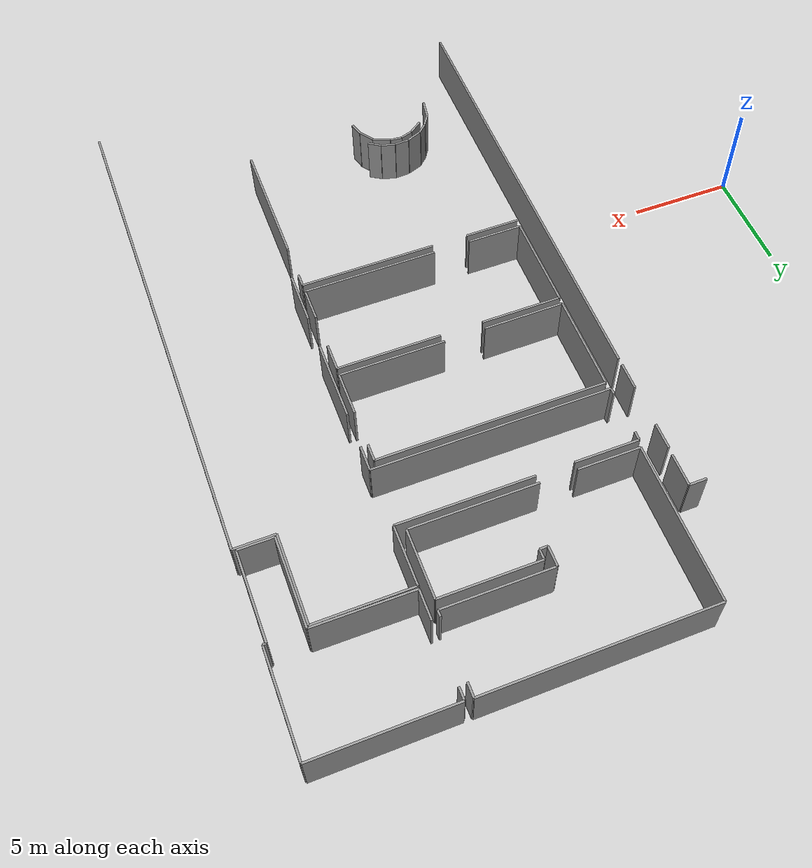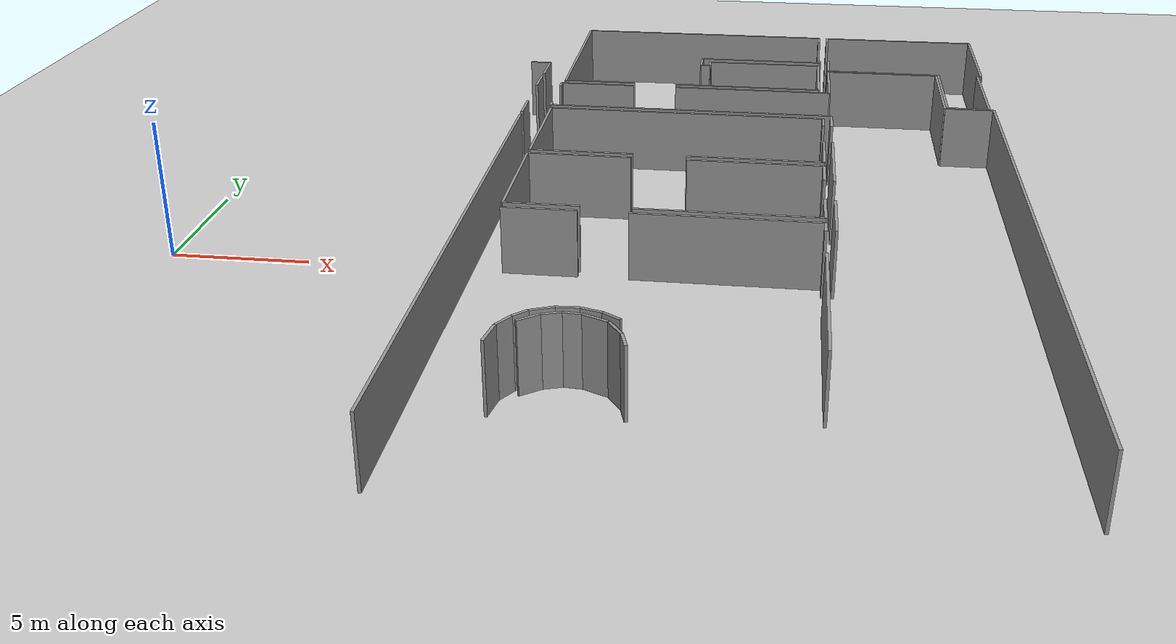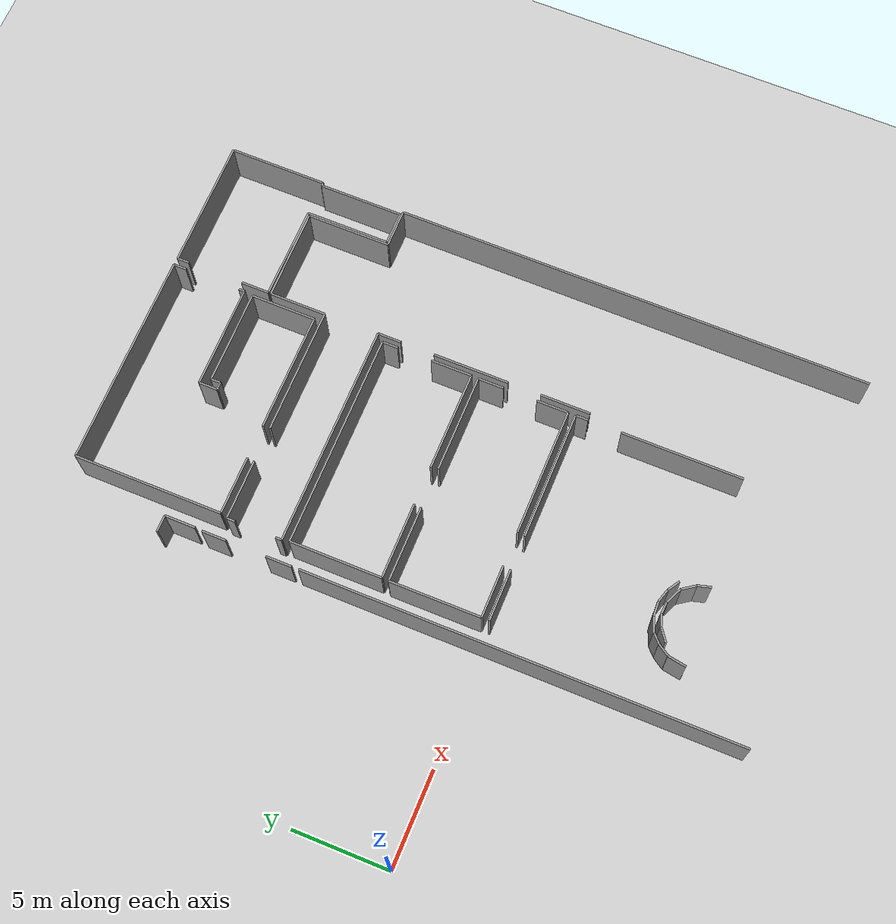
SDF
<sdf version="1.6">
 <world name="default">
  <model name="ground_plane">
   <static>1</static>
   <link name="link">
    <collision name="collision">
     <geometry><plane><normal>0 0 1</normal><size>100 100</size></plane></geometry>
     <surface><friction><ode><mu>100</mu><mu2>50</mu2></ode></friction></surface>
    </collision>
    <visual name="visual">
     <cast_shadows>0</cast_shadows>
     <geometry><plane><normal>0 0 1</normal><size>100 100</size></plane></geometry>
     <material>
      <script><uri>file://media/materials/scripts/gazebo.material</uri><name>Gazebo/Grey</name></script>
     </material>
    </visual>
   </link>
  </model>
  <model name="50032446">
   <static>1</static>
   <link name="Wall_87">
    <collision name="Wall_87_Collision">
     <geometry><box><size>1.24237652803 0.1 2.5</size></box></geometry>
     <pose>0.621188264015 0 1.25 0 0 0</pose>
    </collision>
    <visual name="Wall_87_Visual">
     <pose>0.621188264015 0 1.25 0 0 0</pose>
     <geometry><box><size>1.24237652803 0.1 2.5</size></box></geometry>
     <material>
      <script><uri>file://media/materials/scripts/gazebo.material</uri><name>Gazebo/Grey</name></script>
      <ambient>1 1 1 1</ambient>
     </material>
    </visual>
    <pose>40.6044639646 -8.59445988519 0 0 0 -1.57079632679</pose>
   </link>
   <link name="Wall_88">
    <collision name="Wall_88_Collision">
     <geometry><box><size>1.32243966353 0.1 2.5</size></box></geometry>
     <pose>0.661219831766 0 1.25 0 0 0</pose>
    </collision>
    <visual name="Wall_88_Visual">
     <pose>0.661219831766 0 1.25 0 0 0</pose>
     <geometry><box><size>1.32243966353 0.1 2.5</size></box></geometry>
     <material>
      <script><uri>file://media/materials/scripts/gazebo.material</uri><name>Gazebo/Grey</name></script>
      <ambient>1 1 1 1</ambient>
     </material>
    </visual>
    <pose>40.6044639646 -11.8785734528 0 0 0 -1.57079632679</pose>
   </link>
   <link name="Wall_119">
    <collision name="Wall_119_Collision">
     <geometry><box><size>22.2575516693 0.1 2.5</size></box></geometry>
     <pose>11.1287758347 0 1.25 0 0 0</pose>
    </collision>
    <visual name="Wall_119_Visual">
     <pose>11.1287758347 0 1.25 0 0 0</pose>
     <geometry><box><size>22.2575516693 0.1 2.5</size></box></geometry>
     <material>
      <script><uri>file://media/materials/scripts/gazebo.material</uri><name>Gazebo/Grey</name></script>
      <ambient>1 1 1 1</ambient>
     </material>
    </visual>
    <pose>40.6092931696 -13.5436325026 0 0 0 -1.57079632679</pose>
   </link>
   <link name="Wall_131">
    <collision name="Wall_131_Collision">
     <geometry><box><size>1.56898328714 0.1 2.5</size></box></geometry>
     <pose>0.784491643569 0 1.25 0 0 0</pose>
    </collision>
    <visual name="Wall_131_Visual">
     <pose>0.784491643569 0 1.25 0 0 0</pose>
     <geometry><box><size>1.56898328714 0.1 2.5</size></box></geometry>
     <material>
      <script><uri>file://media/materials/scripts/gazebo.material</uri><name>Gazebo/Grey</name></script>
      <ambient>1 1 1 1</ambient>
     </material>
    </visual>
    <pose>40.634710038 -8.22286526899 0 0 0 1.57079632679</pose>
   </link>
   <link name="Wall_132">
    <collision name="Wall_132_Collision">
     <geometry><box><size>0.849431742364 0.1 2.5</size></box></geometry>
     <pose>0.424715871182 0 1.25 0 0 0</pose>
    </collision>
    <visual name="Wall_132_Visual">
     <pose>0.424715871182 0 1.25 0 0 0</pose>
     <geometry><box><size>0.849431742364 0.1 2.5</size></box></geometry>
     <material>
      <script><uri>file://media/materials/scripts/gazebo.material</uri><name>Gazebo/Grey</name></script>
      <ambient>1 1 1 1</ambient>
     </material>
    </visual>
    <pose>40.634710038 -6.65388198185 0 0 0 3.14159265359</pose>
   </link>
   <link name="Wall_143">
    <collision name="Wall_143_Collision">
     <geometry><box><size>2.5401618292 0.1 2.5</size></box></geometry>
     <pose>1.2700809146 0 1.25 0 0 0</pose>
    </collision>
    <visual name="Wall_143_Visual">
     <pose>1.2700809146 0 1.25 0 0 0</pose>
     <geometry><box><size>2.5401618292 0.1 2.5</size></box></geometry>
     <material>
      <script><uri>file://media/materials/scripts/gazebo.material</uri><name>Gazebo/Grey</name></script>
      <ambient>1 1 1 1</ambient>
     </material>
    </visual>
    <pose>53.0147583046 -23.29659325 0 0 0 1.57079632679</pose>
   </link>
   <link name="Wall_144">
    <collision name="Wall_144_Collision">
     <geometry><box><size>3.8679390351 0.1 2.5</size></box></geometry>
     <pose>1.93396951755 0 1.25 0 0 0</pose>
    </collision>
    <visual name="Wall_144_Visual">
     <pose>1.93396951755 0 1.25 0 0 0</pose>
     <geometry><box><size>3.8679390351 0.1 2.5</size></box></geometry>
     <material>
      <script><uri>file://media/materials/scripts/gazebo.material</uri><name>Gazebo/Grey</name></script>
      <ambient>1 1 1 1</ambient>
     </material>
    </visual>
    <pose>53.0147583046 -19.0598554543 0 0 0 1.57079632679</pose>
   </link>
   <link name="Wall_145">
    <collision name="Wall_145_Collision">
     <geometry><box><size>1.21441797278 0.1 2.5</size></box></geometry>
     <pose>0.607208986388 0 1.25 0 0 0</pose>
    </collision>
    <visual name="Wall_145_Visual">
     <pose>0.607208986388 0 1.25 0 0 0</pose>
     <geometry><box><size>1.21441797278 0.1 2.5</size></box></geometry>
     <material>
      <script><uri>file://media/materials/scripts/gazebo.material</uri><name>Gazebo/Grey</name></script>
      <ambient>1 1 1 1</ambient>
     </material>
    </visual>
    <pose>53.0147583046 -13.4470484026 0 0 0 1.57079632679</pose>
   </link>
   <link name="Wall_146">
    <collision name="Wall_146_Collision">
     <geometry><box><size>11.3943821096 0.1 2.5</size></box></geometry>
     <pose>5.69719105479 0 1.25 0 0 0</pose>
    </collision>
    <visual name="Wall_146_Visual">
     <pose>5.69719105479 0 1.25 0 0 0</pose>
     <geometry><box><size>11.3943821096 0.1 2.5</size></box></geometry>
     <material>
      <script><uri>file://media/materials/scripts/gazebo.material</uri><name>Gazebo/Grey</name></script>
      <ambient>1 1 1 1</ambient>
     </material>
    </visual>
    <pose>53.0147583046 -12.2326304298 0 0 0 3.14159265359</pose>
   </link>
   <link name="Wall_147">
    <collision name="Wall_147_Collision">
     <geometry><box><size>0.315423337006 0.1 2.5</size></box></geometry>
     <pose>0.157711668503 0 1.25 0 0 0</pose>
    </collision>
    <visual name="Wall_147_Visual">
     <pose>0.157711668503 0 1.25 0 0 0</pose>
     <geometry><box><size>0.315423337006 0.1 2.5</size></box></geometry>
     <material>
      <script><uri>file://media/materials/scripts/gazebo.material</uri><name>Gazebo/Grey</name></script>
      <ambient>1 1 1 1</ambient>
     </material>
    </visual>
    <pose>41.6203761951 -12.2326304298 0 0 0 1.57079632679</pose>
   </link>
   <link name="Wall_148">
    <collision name="Wall_148_Collision">
     <geometry><box><size>0.416836641974 0.1 2.5</size></box></geometry>
     <pose>0.208418320987 0 1.25 0 0 0</pose>
    </collision>
    <visual name="Wall_148_Visual">
     <pose>0.208418320987 0 1.25 0 0 0</pose>
     <geometry><box><size>0.416836641974 0.1 2.5</size></box></geometry>
     <material>
      <script><uri>file://media/materials/scripts/gazebo.material</uri><name>Gazebo/Grey</name></script>
      <ambient>1 1 1 1</ambient>
     </material>
    </visual>
    <pose>41.6203761951 -9.82006128007 0 0 0 1.57079632679</pose>
   </link>
   <link name="Wall_149">
    <collision name="Wall_149_Collision">
     <geometry><box><size>3.08332030719 0.1 2.5</size></box></geometry>
     <pose>1.54166015359 0 1.25 0 0 0</pose>
    </collision>
    <visual name="Wall_149_Visual">
     <pose>1.54166015359 0 1.25 0 0 0</pose>
     <geometry><box><size>3.08332030719 0.1 2.5</size></box></geometry>
     <material>
      <script><uri>file://media/materials/scripts/gazebo.material</uri><name>Gazebo/Grey</name></script>
      <ambient>1 1 1 1</ambient>
     </material>
    </visual>
    <pose>41.6203761951 -9.4032246381 0 0 0 0.0</pose>
   </link>
   <link name="Wall_150">
    <collision name="Wall_150_Collision">
     <geometry><box><size>6.47570973428 0.1 2.5</size></box></geometry>
     <pose>3.23785486714 0 1.25 0 0 0</pose>
    </collision>
    <visual name="Wall_150_Visual">
     <pose>3.23785486714 0 1.25 0 0 0</pose>
     <geometry><box><size>6.47570973428 0.1 2.5</size></box></geometry>
     <material>
      <script><uri>file://media/materials/scripts/gazebo.material</uri><name>Gazebo/Grey</name></script>
      <ambient>1 1 1 1</ambient>
     </material>
    </visual>
    <pose>46.5044816293 -9.4032246381 0 0 0 0.0</pose>
   </link>
   <link name="Wall_151">
    <collision name="Wall_151_Collision">
     <geometry><box><size>2.88684791436 0.1 2.5</size></box></geometry>
     <pose>1.44342395718 0 1.25 0 0 0</pose>
    </collision>
    <visual name="Wall_151_Visual">
     <pose>1.44342395718 0 1.25 0 0 0</pose>
     <geometry><box><size>2.88684791436 0.1 2.5</size></box></geometry>
     <material>
      <script><uri>file://media/materials/scripts/gazebo.material</uri><name>Gazebo/Grey</name></script>
      <ambient>1 1 1 1</ambient>
     </material>
    </visual>
    <pose>52.9801913636 -9.4032246381 0 0 0 1.57079632679</pose>
   </link>
   <link name="Wall_152">
    <collision name="Wall_152_Collision">
     <geometry><box><size>4.64137434091 0.1 2.5</size></box></geometry>
     <pose>2.32068717045 0 1.25 0 0 0</pose>
    </collision>
    <visual name="Wall_152_Visual">
     <pose>2.32068717045 0 1.25 0 0 0</pose>
     <geometry><box><size>4.64137434091 0.1 2.5</size></box></geometry>
     <material>
      <script><uri>file://media/materials/scripts/gazebo.material</uri><name>Gazebo/Grey</name></script>
      <ambient>1 1 1 1</ambient>
     </material>
    </visual>
    <pose>52.9801913636 -6.51637672374 0 0 0 0.0</pose>
   </link>
   <link name="Wall_153">
    <collision name="Wall_153_Collision">
     <geometry><box><size>4.26088382077 0.1 2.5</size></box></geometry>
     <pose>2.13044191038 0 1.25 0 0 0</pose>
    </collision>
    <visual name="Wall_153_Visual">
     <pose>2.13044191038 0 1.25 0 0 0</pose>
     <geometry><box><size>4.26088382077 0.1 2.5</size></box></geometry>
     <material>
      <script><uri>file://media/materials/scripts/gazebo.material</uri><name>Gazebo/Grey</name></script>
      <ambient>1 1 1 1</ambient>
     </material>
    </visual>
    <pose>57.6215657045 -6.51637672374 0 0 0 -1.57079632679</pose>
   </link>
   <link name="Wall_154">
    <collision name="Wall_154_Collision">
     <geometry><box><size>1.94159457807 0.1 2.5</size></box></geometry>
     <pose>0.970797289037 0 1.25 0 0 0</pose>
    </collision>
    <visual name="Wall_154_Visual">
     <pose>0.970797289037 0 1.25 0 0 0</pose>
     <geometry><box><size>1.94159457807 0.1 2.5</size></box></geometry>
     <material>
      <script><uri>file://media/materials/scripts/gazebo.material</uri><name>Gazebo/Grey</name></script>
      <ambient>1 1 1 1</ambient>
     </material>
    </visual>
    <pose>57.6215657045 -10.7772605445 0 0 0 0.0</pose>
   </link>
   <link name="Wall_155">
    <collision name="Wall_155_Collision">
     <geometry><box><size>24.4426398468 0.1 2.5</size></box></geometry>
     <pose>12.2213199234 0 1.25 0 0 0</pose>
    </collision>
    <visual name="Wall_155_Visual">
     <pose>12.2213199234 0 1.25 0 0 0</pose>
     <geometry><box><size>24.4426398468 0.1 2.5</size></box></geometry>
     <material>
      <script><uri>file://media/materials/scripts/gazebo.material</uri><name>Gazebo/Grey</name></script>
      <ambient>1 1 1 1</ambient>
     </material>
    </visual>
    <pose>59.5631602826 -10.7772605445 0 0 0 -1.57079632679</pose>
   </link>
   <link name="Wall_164">
    <collision name="Wall_164_Collision">
     <geometry><box><size>2.65402939969 0.1 2.5</size></box></geometry>
     <pose>1.32701469985 0 1.25 0 0 0</pose>
    </collision>
    <visual name="Wall_164_Visual">
     <pose>1.32701469985 0 1.25 0 0 0</pose>
     <geometry><box><size>2.65402939969 0.1 2.5</size></box></geometry>
     <material>
      <script><uri>file://media/materials/scripts/gazebo.material</uri><name>Gazebo/Grey</name></script>
      <ambient>1 1 1 1</ambient>
     </material>
    </visual>
    <pose>41.68315586 -22.68430089 0 0 0 0.0</pose>
   </link>
   <link name="Wall_165">
    <collision name="Wall_165_Collision">
     <geometry><box><size>6.57534385846 0.1 2.5</size></box></geometry>
     <pose>3.28767192923 0 1.25 0 0 0</pose>
    </collision>
    <visual name="Wall_165_Visual">
     <pose>3.28767192923 0 1.25 0 0 0</pose>
     <geometry><box><size>6.57534385846 0.1 2.5</size></box></geometry>
     <material>
      <script><uri>file://media/materials/scripts/gazebo.material</uri><name>Gazebo/Grey</name></script>
      <ambient>1 1 1 1</ambient>
     </material>
    </visual>
    <pose>46.092728361 -22.68430089 0 0 0 0.0</pose>
   </link>
   <link name="Wall_166">
    <collision name="Wall_166_Collision">
     <geometry><box><size>0.642792602166 0.1 2.5</size></box></geometry>
     <pose>0.321396301083 0 1.25 0 0 0</pose>
    </collision>
    <visual name="Wall_166_Visual">
     <pose>0.321396301083 0 1.25 0 0 0</pose>
     <geometry><box><size>0.642792602166 0.1 2.5</size></box></geometry>
     <material>
      <script><uri>file://media/materials/scripts/gazebo.material</uri><name>Gazebo/Grey</name></script>
      <ambient>1 1 1 1</ambient>
     </material>
    </visual>
    <pose>52.6680722195 -22.68430089 0 0 0 -1.57079632679</pose>
   </link>
   <link name="Wall_167">
    <collision name="Wall_167_Collision">
     <geometry><box><size>6.21086596542 0.1 2.5</size></box></geometry>
     <pose>3.10543298271 0 1.25 0 0 0</pose>
    </collision>
    <visual name="Wall_167_Visual">
     <pose>3.10543298271 0 1.25 0 0 0</pose>
     <geometry><box><size>6.21086596542 0.1 2.5</size></box></geometry>
     <material>
      <script><uri>file://media/materials/scripts/gazebo.material</uri><name>Gazebo/Grey</name></script>
      <ambient>1 1 1 1</ambient>
     </material>
    </visual>
    <pose>52.6680722195 -25.0157902295 0 0 0 -1.57079632679</pose>
   </link>
   <link name="Wall_170">
    <collision name="Wall_170_Collision">
     <geometry><box><size>0.673524185334 0.1 2.5</size></box></geometry>
     <pose>0.336762092667 0 1.25 0 0 0</pose>
    </collision>
    <visual name="Wall_170_Visual">
     <pose>0.336762092667 0 1.25 0 0 0</pose>
     <geometry><box><size>0.673524185334 0.1 2.5</size></box></geometry>
     <material>
      <script><uri>file://media/materials/scripts/gazebo.material</uri><name>Gazebo/Grey</name></script>
      <ambient>1 1 1 1</ambient>
     </material>
    </visual>
    <pose>46.7533127711 -30.146693456 0 0 0 2.56259127229</pose>
   </link>
   <link name="Wall_171">
    <collision name="Wall_171_Collision">
     <geometry><box><size>0.722530401823 0.1 2.5</size></box></geometry>
     <pose>0.361265200912 0 1.25 0 0 0</pose>
    </collision>
    <visual name="Wall_171_Visual">
     <pose>0.361265200912 0 1.25 0 0 0</pose>
     <geometry><box><size>0.722530401823 0.1 2.5</size></box></geometry>
     <material>
      <script><uri>file://media/materials/scripts/gazebo.material</uri><name>Gazebo/Grey</name></script>
      <ambient>1 1 1 1</ambient>
     </material>
    </visual>
    <pose>46.1895666297 -29.7781488641 0 0 0 2.85778447335</pose>
   </link>
   <link name="Wall_172">
    <collision name="Wall_172_Collision">
     <geometry><box><size>0.730610303078 0.1 2.5</size></box></geometry>
     <pose>0.365305151539 0 1.25 0 0 0</pose>
    </collision>
    <visual name="Wall_172_Visual">
     <pose>0.365305151539 0 1.25 0 0 0</pose>
     <geometry><box><size>0.730610303078 0.1 2.5</size></box></geometry>
     <material>
      <script><uri>file://media/materials/scripts/gazebo.material</uri><name>Gazebo/Grey</name></script>
      <ambient>1 1 1 1</ambient>
     </material>
    </visual>
    <pose>45.4959402907 -29.5758305915 0 0 0 -3.09217280755</pose>
   </link>
   <link name="Wall_173">
    <collision name="Wall_173_Collision">
     <geometry><box><size>0.800808244944 0.1 2.5</size></box></geometry>
     <pose>0.400404122472 0 1.25 0 0 0</pose>
    </collision>
    <visual name="Wall_173_Visual">
     <pose>0.400404122472 0 1.25 0 0 0</pose>
     <geometry><box><size>0.800808244944 0.1 2.5</size></box></geometry>
     <material>
      <script><uri>file://media/materials/scripts/gazebo.material</uri><name>Gazebo/Grey</name></script>
      <ambient>1 1 1 1</ambient>
     </material>
    </visual>
    <pose>44.7662219986 -29.6119225446 0 0 0 -2.76250078605</pose>
   </link>
   <link name="Wall_174">
    <collision name="Wall_174_Collision">
     <geometry><box><size>0.572337424438 0.1 2.5</size></box></geometry>
     <pose>0.286168712219 0 1.25 0 0 0</pose>
    </collision>
    <visual name="Wall_174_Visual">
     <pose>0.286168712219 0 1.25 0 0 0</pose>
     <geometry><box><size>0.572337424438 0.1 2.5</size></box></geometry>
     <material>
      <script><uri>file://media/materials/scripts/gazebo.material</uri><name>Gazebo/Grey</name></script>
      <ambient>1 1 1 1</ambient>
     </material>
    </visual>
    <pose>44.0222702601 -29.9082832303 0 0 0 -2.37440855614</pose>
   </link>
   <link name="Wall_175">
    <collision name="Wall_175_Collision">
     <geometry><box><size>0.679492109163 0.1 2.5</size></box></geometry>
     <pose>0.339746054582 0 1.25 0 0 0</pose>
    </collision>
    <visual name="Wall_175_Visual">
     <pose>0.339746054582 0 1.25 0 0 0</pose>
     <geometry><box><size>0.679492109163 0.1 2.5</size></box></geometry>
     <material>
      <script><uri>file://media/materials/scripts/gazebo.material</uri><name>Gazebo/Grey</name></script>
      <ambient>1 1 1 1</ambient>
     </material>
    </visual>
    <pose>43.6102628231 -30.3055488836 0 0 0 -2.1440666491</pose>
   </link>
   <link name="Wall_176">
    <collision name="Wall_176_Collision">
     <geometry><box><size>0.952493540647 0.1 2.5</size></box></geometry>
     <pose>0.476246770324 0 1.25 0 0 0</pose>
    </collision>
    <visual name="Wall_176_Visual">
     <pose>0.476246770324 0 1.25 0 0 0</pose>
     <geometry><box><size>0.952493540647 0.1 2.5</size></box></geometry>
     <material>
      <script><uri>file://media/materials/scripts/gazebo.material</uri><name>Gazebo/Grey</name></script>
      <ambient>1 1 1 1</ambient>
     </material>
    </visual>
    <pose>43.2417182311 -30.8764117482 0 0 0 -1.73835780935</pose>
   </link>
   <link name="Wall_182">
    <collision name="Wall_182_Collision">
     <geometry><box><size>2.67385455705 0.1 2.5</size></box></geometry>
     <pose>1.33692727853 0 1.25 0 0 0</pose>
    </collision>
    <visual name="Wall_182_Visual">
     <pose>1.33692727853 0 1.25 0 0 0</pose>
     <geometry><box><size>2.67385455705 0.1 2.5</size></box></geometry>
     <material>
      <script><uri>file://media/materials/scripts/gazebo.material</uri><name>Gazebo/Grey</name></script>
      <ambient>1 1 1 1</ambient>
     </material>
    </visual>
    <pose>41.6943392822 -22.2982186588 0 0 0 0.0</pose>
   </link>
   <link name="Wall_183">
    <collision name="Wall_183_Collision">
     <geometry><box><size>6.50087243401 0.1 2.5</size></box></geometry>
     <pose>3.250436217 0 1.25 0 0 0</pose>
    </collision>
    <visual name="Wall_183_Visual">
     <pose>3.250436217 0 1.25 0 0 0</pose>
     <geometry><box><size>6.50087243401 0.1 2.5</size></box></geometry>
     <material>
      <script><uri>file://media/materials/scripts/gazebo.material</uri><name>Gazebo/Grey</name></script>
      <ambient>1 1 1 1</ambient>
     </material>
    </visual>
    <pose>46.16440393 -22.2982186588 0 0 0 0.0</pose>
   </link>
   <link name="Wall_184">
    <collision name="Wall_184_Collision">
     <geometry><box><size>1.60863360186 0.1 2.5</size></box></geometry>
     <pose>0.804316800931 0 1.25 0 0 0</pose>
    </collision>
    <visual name="Wall_184_Visual">
     <pose>0.804316800931 0 1.25 0 0 0</pose>
     <geometry><box><size>1.60863360186 0.1 2.5</size></box></geometry>
     <material>
      <script><uri>file://media/materials/scripts/gazebo.material</uri><name>Gazebo/Grey</name></script>
      <ambient>1 1 1 1</ambient>
     </material>
    </visual>
    <pose>52.665276364 -22.2982186588 0 0 0 1.57079632679</pose>
   </link>
   <link name="Wall_185">
    <collision name="Wall_185_Collision">
     <geometry><box><size>1.32243966353 0.1 2.5</size></box></geometry>
     <pose>0.661219831766 0 1.25 0 0 0</pose>
    </collision>
    <visual name="Wall_185_Visual">
     <pose>0.661219831766 0 1.25 0 0 0</pose>
     <geometry><box><size>1.32243966353 0.1 2.5</size></box></geometry>
     <material>
      <script><uri>file://media/materials/scripts/gazebo.material</uri><name>Gazebo/Grey</name></script>
      <ambient>1 1 1 1</ambient>
     </material>
    </visual>
    <pose>52.665276364 -18.9703880775 0 0 0 1.57079632679</pose>
   </link>
   <link name="Wall_186">
    <collision name="Wall_186_Collision">
     <geometry><box><size>5.01271478842 0.1 2.5</size></box></geometry>
     <pose>2.50635739421 0 1.25 0 0 0</pose>
    </collision>
    <visual name="Wall_186_Visual">
     <pose>2.50635739421 0 1.25 0 0 0</pose>
     <geometry><box><size>5.01271478842 0.1 2.5</size></box></geometry>
     <material>
      <script><uri>file://media/materials/scripts/gazebo.material</uri><name>Gazebo/Grey</name></script>
      <ambient>1 1 1 1</ambient>
     </material>
    </visual>
    <pose>52.665276364 -17.6479484139 0 0 0 3.14159265359</pose>
   </link>
   <link name="Wall_187">
    <collision name="Wall_187_Collision">
     <geometry><box><size>3.89233922878 0.1 2.5</size></box></geometry>
     <pose>1.94616961439 0 1.25 0 0 0</pose>
    </collision>
    <visual name="Wall_187_Visual">
     <pose>1.94616961439 0 1.25 0 0 0</pose>
     <geometry><box><size>3.89233922878 0.1 2.5</size></box></geometry>
     <material>
      <script><uri>file://media/materials/scripts/gazebo.material</uri><name>Gazebo/Grey</name></script>
      <ambient>1 1 1 1</ambient>
     </material>
    </visual>
    <pose>45.5757492575 -17.6479484139 0 0 0 3.14159265359</pose>
   </link>
   <link name="Wall_188">
    <collision name="Wall_188_Collision">
     <geometry><box><size>4.65028308802 0.1 2.5</size></box></geometry>
     <pose>2.32514154401 0 1.25 0 0 0</pose>
    </collision>
    <visual name="Wall_188_Visual">
     <pose>2.32514154401 0 1.25 0 0 0</pose>
     <geometry><box><size>4.65028308802 0.1 2.5</size></box></geometry>
     <material>
      <script><uri>file://media/materials/scripts/gazebo.material</uri><name>Gazebo/Grey</name></script>
      <ambient>1 1 1 1</ambient>
     </material>
    </visual>
    <pose>41.6834100287 -17.6479484139 0 0 0 -1.56844609063</pose>
   </link>
   <link name="Wall_189">
    <collision name="Wall_189_Collision">
     <geometry><box><size>4.69830812615 0.1 2.5</size></box></geometry>
     <pose>2.34915406308 0 1.25 0 0 0</pose>
    </collision>
    <visual name="Wall_189_Visual">
     <pose>2.34915406308 0 1.25 0 0 0</pose>
     <geometry><box><size>4.69830812615 0.1 2.5</size></box></geometry>
     <material>
      <script><uri>file://media/materials/scripts/gazebo.material</uri><name>Gazebo/Grey</name></script>
      <ambient>1 1 1 1</ambient>
     </material>
    </visual>
    <pose>41.7022185114 -17.2969414611 0 0 0 1.57079632679</pose>
   </link>
   <link name="Wall_190">
    <collision name="Wall_190_Collision">
     <geometry><box><size>10.9833913473 0.1 2.5</size></box></geometry>
     <pose>5.49169567367 0 1.25 0 0 0</pose>
    </collision>
    <visual name="Wall_190_Visual">
     <pose>5.49169567367 0 1.25 0 0 0</pose>
     <geometry><box><size>10.9833913473 0.1 2.5</size></box></geometry>
     <material>
      <script><uri>file://media/materials/scripts/gazebo.material</uri><name>Gazebo/Grey</name></script>
      <ambient>1 1 1 1</ambient>
     </material>
    </visual>
    <pose>41.7022185114 -12.598633335 0 0 0 0.0</pose>
   </link>
   <link name="Wall_191">
    <collision name="Wall_191_Collision">
     <geometry><box><size>0.824014873951 0.1 2.5</size></box></geometry>
     <pose>0.412007436976 0 1.25 0 0 0</pose>
    </collision>
    <visual name="Wall_191_Visual">
     <pose>0.412007436976 0 1.25 0 0 0</pose>
     <geometry><box><size>0.824014873951 0.1 2.5</size></box></geometry>
     <material>
      <script><uri>file://media/materials/scripts/gazebo.material</uri><name>Gazebo/Grey</name></script>
      <ambient>1 1 1 1</ambient>
     </material>
    </visual>
    <pose>52.6856098587 -12.598633335 0 0 0 -1.57079632679</pose>
   </link>
   <link name="Wall_192">
    <collision name="Wall_192_Collision">
     <geometry><box><size>2.10731256013 0.1 2.5</size></box></geometry>
     <pose>1.05365628006 0 1.25 0 0 0</pose>
    </collision>
    <visual name="Wall_192_Visual">
     <pose>1.05365628006 0 1.25 0 0 0</pose>
     <geometry><box><size>2.10731256013 0.1 2.5</size></box></geometry>
     <material>
      <script><uri>file://media/materials/scripts/gazebo.material</uri><name>Gazebo/Grey</name></script>
      <ambient>1 1 1 1</ambient>
     </material>
    </visual>
    <pose>52.6856098587 -15.1774288042 0 0 0 -1.57079632679</pose>
   </link>
   <link name="Wall_193">
    <collision name="Wall_193_Collision">
     <geometry><box><size>5.09125291182 0.1 2.5</size></box></geometry>
     <pose>2.54562645591 0 1.25 0 0 0</pose>
    </collision>
    <visual name="Wall_193_Visual">
     <pose>2.54562645591 0 1.25 0 0 0</pose>
     <geometry><box><size>5.09125291182 0.1 2.5</size></box></geometry>
     <material>
      <script><uri>file://media/materials/scripts/gazebo.material</uri><name>Gazebo/Grey</name></script>
      <ambient>1 1 1 1</ambient>
     </material>
    </visual>
    <pose>52.6856098587 -17.2847413643 0 0 0 3.14159265359</pose>
   </link>
   <link name="Wall_194">
    <collision name="Wall_194_Collision">
     <geometry><box><size>3.90684589273 0.1 2.5</size></box></geometry>
     <pose>1.95342294637 0 1.25 0 0 0</pose>
    </collision>
    <visual name="Wall_194_Visual">
     <pose>1.95342294637 0 1.25 0 0 0</pose>
     <geometry><box><size>3.90684589273 0.1 2.5</size></box></geometry>
     <material>
      <script><uri>file://media/materials/scripts/gazebo.material</uri><name>Gazebo/Grey</name></script>
      <ambient>1 1 1 1</ambient>
     </material>
    </visual>
    <pose>45.6090453551 -17.2847413643 0 0 0 -3.13846990009</pose>
   </link>
   <link name="Wall_195">
    <collision name="Wall_195_Collision">
     <geometry><box><size>7.61133541497 0.1 2.5</size></box></geometry>
     <pose>3.80566770749 0 1.25 0 0 0</pose>
    </collision>
    <visual name="Wall_195_Visual">
     <pose>3.80566770749 0 1.25 0 0 0</pose>
     <geometry><box><size>7.61133541497 0.1 2.5</size></box></geometry>
     <material>
      <script><uri>file://media/materials/scripts/gazebo.material</uri><name>Gazebo/Grey</name></script>
      <ambient>1 1 1 1</ambient>
     </material>
    </visual>
    <pose>41.7357687777 -9.04128843189 0 0 0 1.57079632679</pose>
   </link>
   <link name="Wall_196">
    <collision name="Wall_196_Collision">
     <geometry><box><size>10.8794363555 0.1 2.5</size></box></geometry>
     <pose>5.43971817776 0 1.25 0 0 0</pose>
    </collision>
    <visual name="Wall_196_Visual">
     <pose>5.43971817776 0 1.25 0 0 0</pose>
     <geometry><box><size>10.8794363555 0.1 2.5</size></box></geometry>
     <material>
      <script><uri>file://media/materials/scripts/gazebo.material</uri><name>Gazebo/Grey</name></script>
      <ambient>1 1 1 1</ambient>
     </material>
    </visual>
    <pose>41.7357687777 -1.42995301692 0 0 0 0.0</pose>
   </link>
   <link name="Wall_197">
    <collision name="Wall_197_Collision">
     <geometry><box><size>0.675834531103 0.1 2.5</size></box></geometry>
     <pose>0.337917265552 0 1.25 0 0 0</pose>
    </collision>
    <visual name="Wall_197_Visual">
     <pose>0.337917265552 0 1.25 0 0 0</pose>
     <geometry><box><size>0.675834531103 0.1 2.5</size></box></geometry>
     <material>
      <script><uri>file://media/materials/scripts/gazebo.material</uri><name>Gazebo/Grey</name></script>
      <ambient>1 1 1 1</ambient>
     </material>
    </visual>
    <pose>52.6152051332 -1.42995301692 0 0 0 -1.57079632679</pose>
   </link>
   <link name="Wall_198">
    <collision name="Wall_198_Collision">
     <geometry><box><size>0.300935722011 0.1 2.5</size></box></geometry>
     <pose>0.150467861005 0 1.25 0 0 0</pose>
    </collision>
    <visual name="Wall_198_Visual">
     <pose>0.150467861005 0 1.25 0 0 0</pose>
     <geometry><box><size>0.300935722011 0.1 2.5</size></box></geometry>
     <material>
      <script><uri>file://media/materials/scripts/gazebo.material</uri><name>Gazebo/Grey</name></script>
      <ambient>1 1 1 1</ambient>
     </material>
    </visual>
    <pose>52.6152051332 -4.9634060637 0 0 0 -1.57079632679</pose>
   </link>
   <link name="Wall_199">
    <collision name="Wall_199_Collision">
     <geometry><box><size>5.24070409809 0.1 2.5</size></box></geometry>
     <pose>2.62035204904 0 1.25 0 0 0</pose>
    </collision>
    <visual name="Wall_199_Visual">
     <pose>2.62035204904 0 1.25 0 0 0</pose>
     <geometry><box><size>5.24070409809 0.1 2.5</size></box></geometry>
     <material>
      <script><uri>file://media/materials/scripts/gazebo.material</uri><name>Gazebo/Grey</name></script>
      <ambient>1 1 1 1</ambient>
     </material>
    </visual>
    <pose>52.6152051332 -5.26434178571 0 0 0 3.14159265359</pose>
   </link>
   <link name="Wall_200">
    <collision name="Wall_200_Collision">
     <geometry><box><size>0.958978445225 0.1 2.5</size></box></geometry>
     <pose>0.479489222612 0 1.25 0 0 0</pose>
    </collision>
    <visual name="Wall_200_Visual">
     <pose>0.479489222612 0 1.25 0 0 0</pose>
     <geometry><box><size>0.958978445225 0.1 2.5</size></box></geometry>
     <material>
      <script><uri>file://media/materials/scripts/gazebo.material</uri><name>Gazebo/Grey</name></script>
      <ambient>1 1 1 1</ambient>
     </material>
    </visual>
    <pose>47.3745010351 -5.26434178571 0 0 0 -1.57079632679</pose>
   </link>
   <link name="Wall_201">
    <collision name="Wall_201_Collision">
     <geometry><box><size>0.382269700932 0.1 2.5</size></box></geometry>
     <pose>0.191134850466 0 1.25 0 0 0</pose>
    </collision>
    <visual name="Wall_201_Visual">
     <pose>0.191134850466 0 1.25 0 0 0</pose>
     <geometry><box><size>0.382269700932 0.1 2.5</size></box></geometry>
     <material>
      <script><uri>file://media/materials/scripts/gazebo.material</uri><name>Gazebo/Grey</name></script>
      <ambient>1 1 1 1</ambient>
     </material>
    </visual>
    <pose>47.3745010351 -6.22332023094 0 0 0 0.0</pose>
   </link>
   <link name="Wall_202">
    <collision name="Wall_202_Collision">
     <geometry><box><size>0.496899777475 0.1 2.5</size></box></geometry>
     <pose>0.248449888738 0 1.25 0 0 0</pose>
    </collision>
    <visual name="Wall_202_Visual">
     <pose>0.248449888738 0 1.25 0 0 0</pose>
     <geometry><box><size>0.496899777475 0.1 2.5</size></box></geometry>
     <material>
      <script><uri>file://media/materials/scripts/gazebo.material</uri><name>Gazebo/Grey</name></script>
      <ambient>1 1 1 1</ambient>
     </material>
    </visual>
    <pose>47.756770736 -6.22332023094 0 0 0 1.57079632679</pose>
   </link>
   <link name="Wall_203">
    <collision name="Wall_203_Collision">
     <geometry><box><size>4.78497964744 0.1 2.5</size></box></geometry>
     <pose>2.39248982372 0 1.25 0 0 0</pose>
    </collision>
    <visual name="Wall_203_Visual">
     <pose>2.39248982372 0 1.25 0 0 0</pose>
     <geometry><box><size>4.78497964744 0.1 2.5</size></box></geometry>
     <material>
      <script><uri>file://media/materials/scripts/gazebo.material</uri><name>Gazebo/Grey</name></script>
      <ambient>1 1 1 1</ambient>
     </material>
    </visual>
    <pose>47.756770736 -5.72642045346 0 0 0 0.0</pose>
   </link>
   <link name="Wall_204">
    <collision name="Wall_204_Collision">
     <geometry><box><size>3.31410547238 0.1 2.5</size></box></geometry>
     <pose>1.65705273619 0 1.25 0 0 0</pose>
    </collision>
    <visual name="Wall_204_Visual">
     <pose>1.65705273619 0 1.25 0 0 0</pose>
     <geometry><box><size>3.31410547238 0.1 2.5</size></box></geometry>
     <material>
      <script><uri>file://media/materials/scripts/gazebo.material</uri><name>Gazebo/Grey</name></script>
      <ambient>1 1 1 1</ambient>
     </material>
    </visual>
    <pose>52.5417503835 -5.72642045346 0 0 0 -1.57079632679</pose>
   </link>
   <link name="Wall_205">
    <collision name="Wall_205_Collision">
     <geometry><box><size>6.05404388731 0.1 2.5</size></box></geometry>
     <pose>3.02702194365 0 1.25 0 0 0</pose>
    </collision>
    <visual name="Wall_205_Visual">
     <pose>3.02702194365 0 1.25 0 0 0</pose>
     <geometry><box><size>6.05404388731 0.1 2.5</size></box></geometry>
     <material>
      <script><uri>file://media/materials/scripts/gazebo.material</uri><name>Gazebo/Grey</name></script>
      <ambient>1 1 1 1</ambient>
     </material>
    </visual>
    <pose>52.5417503835 -9.04052592584 0 0 0 3.14159265359</pose>
   </link>
   <link name="Wall_206">
    <collision name="Wall_206_Collision">
     <geometry><box><size>2.99309052145 0.1 2.5</size></box></geometry>
     <pose>1.49654526072 0 1.25 0 0 0</pose>
    </collision>
    <visual name="Wall_206_Visual">
     <pose>1.49654526072 0 1.25 0 0 0</pose>
     <geometry><box><size>2.99309052145 0.1 2.5</size></box></geometry>
     <material>
      <script><uri>file://media/materials/scripts/gazebo.material</uri><name>Gazebo/Grey</name></script>
      <ambient>1 1 1 1</ambient>
     </material>
    </visual>
    <pose>44.728859202 -9.04052592584 0 0 0 -3.14133789816</pose>
   </link>
   <link name="Wall_207">
    <collision name="Wall_207_Collision">
     <geometry><box><size>1.43961142692 0.1 2.5</size></box></geometry>
     <pose>0.719805713458 0 1.25 0 0 0</pose>
    </collision>
    <visual name="Wall_207_Visual">
     <pose>0.719805713458 0 1.25 0 0 0</pose>
     <geometry><box><size>1.43961142692 0.1 2.5</size></box></geometry>
     <material>
      <script><uri>file://media/materials/scripts/gazebo.material</uri><name>Gazebo/Grey</name></script>
      <ambient>1 1 1 1</ambient>
     </material>
    </visual>
    <pose>52.9934081352 -6.37912563431 0 0 0 1.57079632679</pose>
   </link>
   <link name="Wall_208">
    <collision name="Wall_208_Collision">
     <geometry><box><size>0.604158962178 0.1 2.5</size></box></geometry>
     <pose>0.302079481089 0 1.25 0 0 0</pose>
    </collision>
    <visual name="Wall_208_Visual">
     <pose>0.302079481089 0 1.25 0 0 0</pose>
     <geometry><box><size>0.604158962178 0.1 2.5</size></box></geometry>
     <material>
      <script><uri>file://media/materials/scripts/gazebo.material</uri><name>Gazebo/Grey</name></script>
      <ambient>1 1 1 1</ambient>
     </material>
    </visual>
    <pose>52.9934081352 -2.06054552225 0 0 0 1.57079632679</pose>
   </link>
   <link name="Wall_209">
    <collision name="Wall_209_Collision">
     <geometry><box><size>6.55831455662 0.1 2.5</size></box></geometry>
     <pose>3.27915727831 0 1.25 0 0 0</pose>
    </collision>
    <visual name="Wall_209_Visual">
     <pose>3.27915727831 0 1.25 0 0 0</pose>
     <geometry><box><size>6.55831455662 0.1 2.5</size></box></geometry>
     <material>
      <script><uri>file://media/materials/scripts/gazebo.material</uri><name>Gazebo/Grey</name></script>
      <ambient>1 1 1 1</ambient>
     </material>
    </visual>
    <pose>52.9934081352 -1.45638656007 0 0 0 0.0</pose>
   </link>
   <link name="Wall_210">
    <collision name="Wall_210_Collision">
     <geometry><box><size>4.94866428002 0.1 2.5</size></box></geometry>
     <pose>2.47433214001 0 1.25 0 0 0</pose>
    </collision>
    <visual name="Wall_210_Visual">
     <pose>2.47433214001 0 1.25 0 0 0</pose>
     <geometry><box><size>4.94866428002 0.1 2.5</size></box></geometry>
     <material>
      <script><uri>file://media/materials/scripts/gazebo.material</uri><name>Gazebo/Grey</name></script>
      <ambient>1 1 1 1</ambient>
     </material>
    </visual>
    <pose>59.5517226918 -1.45638656007 0 0 0 -1.57079632679</pose>
   </link>
   <link name="Wall_211">
    <collision name="Wall_211_Collision">
     <geometry><box><size>0.154534559951 0.1 2.5</size></box></geometry>
     <pose>0.0772672799757 0 1.25 0 0 0</pose>
    </collision>
    <visual name="Wall_211_Visual">
     <pose>0.0772672799757 0 1.25 0 0 0</pose>
     <geometry><box><size>0.154534559951 0.1 2.5</size></box></geometry>
     <material>
      <script><uri>file://media/materials/scripts/gazebo.material</uri><name>Gazebo/Grey</name></script>
      <ambient>1 1 1 1</ambient>
     </material>
    </visual>
    <pose>59.5517226918 -6.40505084009 0 0 0 3.14159265359</pose>
   </link>
   <link name="Wall_212">
    <collision name="Wall_212_Collision">
     <geometry><box><size>4.27918396602 0.1 2.5</size></box></geometry>
     <pose>2.13959198301 0 1.25 0 0 0</pose>
    </collision>
    <visual name="Wall_212_Visual">
     <pose>2.13959198301 0 1.25 0 0 0</pose>
     <geometry><box><size>4.27918396602 0.1 2.5</size></box></geometry>
     <material>
      <script><uri>file://media/materials/scripts/gazebo.material</uri><name>Gazebo/Grey</name></script>
      <ambient>1 1 1 1</ambient>
     </material>
    </visual>
    <pose>59.3971881318 -6.40505084009 0 0 0 -1.57079632679</pose>
   </link>
   <link name="Wall_213">
    <collision name="Wall_213_Collision">
     <geometry><box><size>1.67624247184 0.1 2.5</size></box></geometry>
     <pose>0.838121235921 0 1.25 0 0 0</pose>
    </collision>
    <visual name="Wall_213_Visual">
     <pose>0.838121235921 0 1.25 0 0 0</pose>
     <geometry><box><size>1.67624247184 0.1 2.5</size></box></geometry>
     <material>
      <script><uri>file://media/materials/scripts/gazebo.material</uri><name>Gazebo/Grey</name></script>
      <ambient>1 1 1 1</ambient>
     </material>
    </visual>
    <pose>59.3971881318 -10.6842348061 0 0 0 3.14159265359</pose>
   </link>
   <link name="Wall_214">
    <collision name="Wall_214_Collision">
     <geometry><box><size>4.26469635103 0.1 2.5</size></box></geometry>
     <pose>2.13234817551 0 1.25 0 0 0</pose>
    </collision>
    <visual name="Wall_214_Visual">
     <pose>2.13234817551 0 1.25 0 0 0</pose>
     <geometry><box><size>4.26469635103 0.1 2.5</size></box></geometry>
     <material>
      <script><uri>file://media/materials/scripts/gazebo.material</uri><name>Gazebo/Grey</name></script>
      <ambient>1 1 1 1</ambient>
     </material>
    </visual>
    <pose>57.72094566 -10.6842348061 0 0 0 1.57079632679</pose>
   </link>
   <link name="Wall_215">
    <collision name="Wall_215_Collision">
     <geometry><box><size>4.72771025389 0.1 2.5</size></box></geometry>
     <pose>2.36385512695 0 1.25 0 0 0</pose>
    </collision>
    <visual name="Wall_215_Visual">
     <pose>2.36385512695 0 1.25 0 0 0</pose>
     <geometry><box><size>4.72771025389 0.1 2.5</size></box></geometry>
     <material>
      <script><uri>file://media/materials/scripts/gazebo.material</uri><name>Gazebo/Grey</name></script>
      <ambient>1 1 1 1</ambient>
     </material>
    </visual>
    <pose>57.72094566 -6.41953845509 0 0 0 3.13304447471</pose>
   </link>
   <link name="Wall_221">
    <collision name="Wall_221_Collision">
     <geometry><box><size>0.785904408659 0.1 2.5</size></box></geometry>
     <pose>0.392952204329 0 1.25 0 0 0</pose>
    </collision>
    <visual name="Wall_221_Visual">
     <pose>0.392952204329 0 1.25 0 0 0</pose>
     <geometry><box><size>0.785904408659 0.1 2.5</size></box></geometry>
     <material>
      <script><uri>file://media/materials/scripts/gazebo.material</uri><name>Gazebo/Grey</name></script>
      <ambient>1 1 1 1</ambient>
     </material>
    </visual>
    <pose>43.7813183475 -30.5696301464 0 0 0 0.637356296096</pose>
   </link>
   <link name="Wall_222">
    <collision name="Wall_222_Collision">
     <geometry><box><size>0.63946507301 0.1 2.5</size></box></geometry>
     <pose>0.319732536505 0 1.25 0 0 0</pose>
    </collision>
    <visual name="Wall_222_Visual">
     <pose>0.319732536505 0 1.25 0 0 0</pose>
     <geometry><box><size>0.63946507301 0.1 2.5</size></box></geometry>
     <material>
      <script><uri>file://media/materials/scripts/gazebo.material</uri><name>Gazebo/Grey</name></script>
      <ambient>1 1 1 1</ambient>
     </material>
    </visual>
    <pose>44.4129275276 -30.1019597676 0 0 0 0.321499171798</pose>
   </link>
   <link name="Wall_223">
    <collision name="Wall_223_Collision">
     <geometry><box><size>0.596141798545 0.1 2.5</size></box></geometry>
     <pose>0.298070899272 0 1.25 0 0 0</pose>
    </collision>
    <visual name="Wall_223_Visual">
     <pose>0.298070899272 0 1.25 0 0 0</pose>
     <geometry><box><size>0.596141798545 0.1 2.5</size></box></geometry>
     <material>
      <script><uri>file://media/materials/scripts/gazebo.material</uri><name>Gazebo/Grey</name></script>
      <ambient>1 1 1 1</ambient>
     </material>
    </visual>
    <pose>45.0196281766 -29.8998956638 0 0 0 -0.0849469871045</pose>
   </link>
   <link name="Wall_224">
    <collision name="Wall_224_Collision">
     <geometry><box><size>0.899191259053 0.1 2.5</size></box></geometry>
     <pose>0.449595629526 0 1.25 0 0 0</pose>
    </collision>
    <visual name="Wall_224_Visual">
     <pose>0.449595629526 0 1.25 0 0 0</pose>
     <geometry><box><size>0.899191259053 0.1 2.5</size></box></geometry>
     <material>
      <script><uri>file://media/materials/scripts/gazebo.material</uri><name>Gazebo/Grey</name></script>
      <ambient>1 1 1 1</ambient>
     </material>
    </visual>
    <pose>45.6136203914 -29.9504752319 0 0 0 -0.419515836481</pose>
   </link>
   <link name="Wall_225">
    <collision name="Wall_225_Collision">
     <geometry><box><size>0.788963341614 0.1 2.5</size></box></geometry>
     <pose>0.394481670807 0 1.25 0 0 0</pose>
    </collision>
    <visual name="Wall_225_Visual">
     <pose>0.394481670807 0 1.25 0 0 0</pose>
     <geometry><box><size>0.788963341614 0.1 2.5</size></box></geometry>
     <material>
      <script><uri>file://media/materials/scripts/gazebo.material</uri><name>Gazebo/Grey</name></script>
      <ambient>1 1 1 1</ambient>
     </material>
    </visual>
    <pose>46.4348394099 -30.3167323057 0 0 0 -0.95616433846</pose>
   </link>
   <link name="Wall_226">
    <collision name="Wall_226_Collision">
     <geometry><box><size>0.683838518352 0.1 2.5</size></box></geometry>
     <pose>0.341919259176 0 1.25 0 0 0</pose>
    </collision>
    <visual name="Wall_226_Visual">
     <pose>0.341919259176 0 1.25 0 0 0</pose>
     <geometry><box><size>0.683838518352 0.1 2.5</size></box></geometry>
     <material>
      <script><uri>file://media/materials/scripts/gazebo.material</uri><name>Gazebo/Grey</name></script>
      <ambient>1 1 1 1</ambient>
     </material>
    </visual>
    <pose>46.8898013545 -30.9613040887 0 0 0 -1.28984185195</pose>
   </link>
   <pose>-29.75 22.7787992817 0 0 0 0</pose>
  </model>
 </world>
</sdf>
